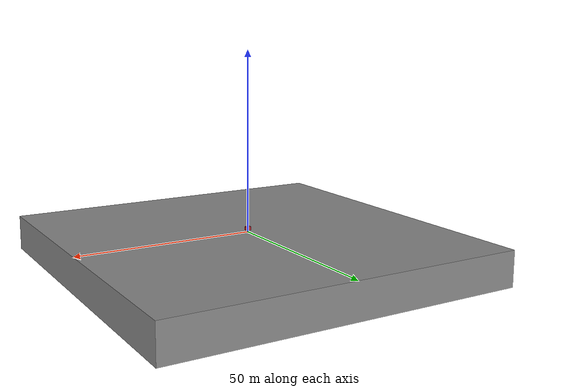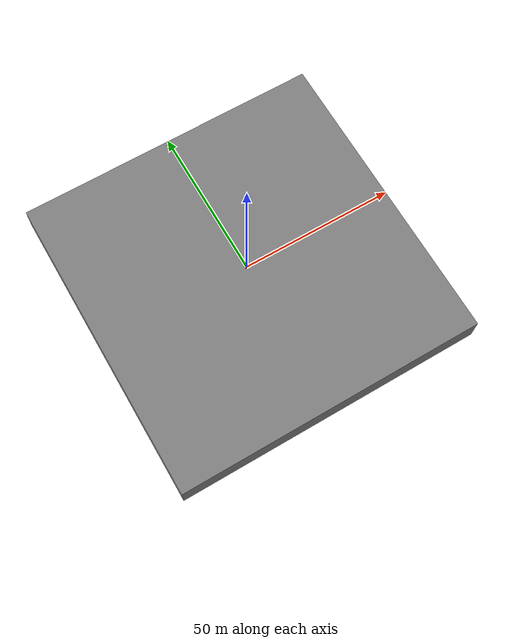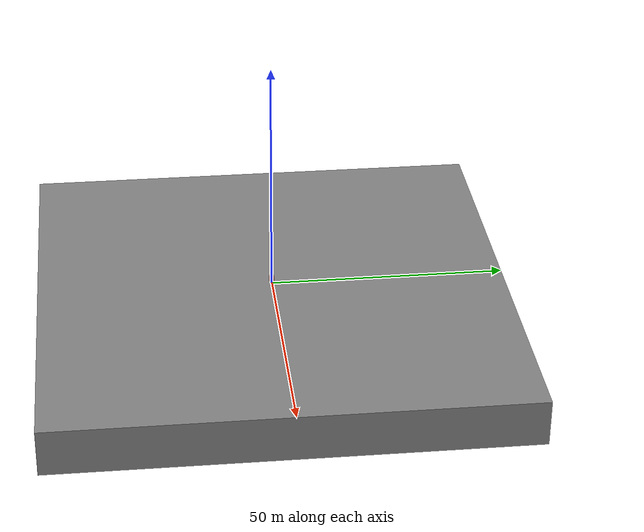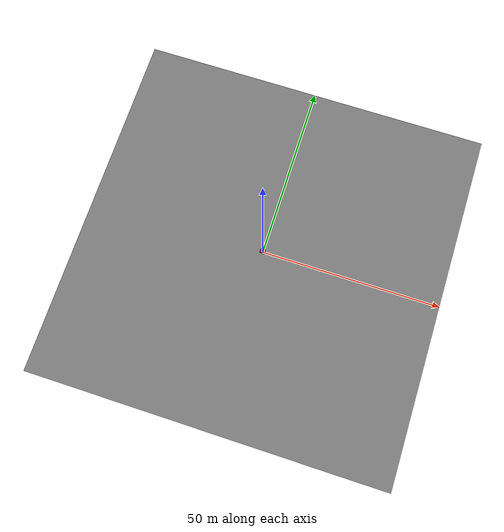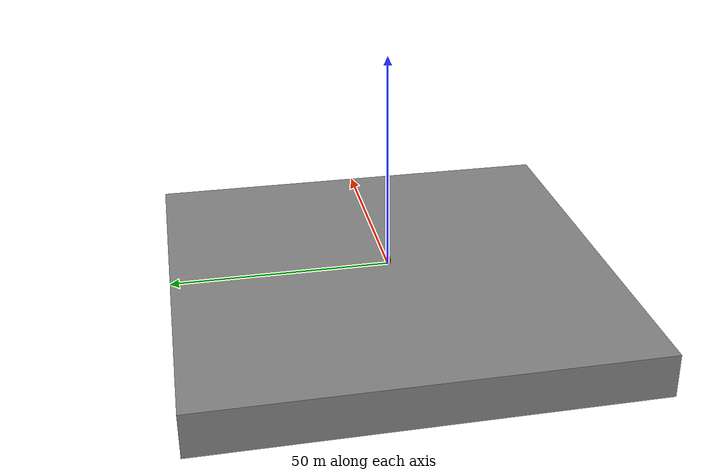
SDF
<?xml version='1.0'?>

<sdf version='1.6'>
    <model name='simple_car'>
        <link name='ground'>
            <pose frame=''>0 0 -5 0 0 0</pose>
            <inertial>
                <pose frame=''>0 0 0 0 0 0</pose>
                <mass>0</mass>
                <inertia>
                    <ixx>0</ixx>
                    <ixy>0</ixy>
                    <ixz>0</ixz>
                    <iyy>0</iyy>
                    <iyz>0</iyz>
                    <izz>0</izz>
                </inertia>
            </inertial>
            <collision name='ground_collision'>
                <pose frame=''>0 0 0 0 0 0</pose>
                <geometry>
                    <box>
                        <size>100.0 100.0 10.0</size>
                    </box>
                </geometry>
            </collision>
            <visual name='ground_visual'>
                <pose frame=''>0 0 0 0 0 0</pose>
                <geometry>
                    <box>
                        <size>100.0 100.0 10.0</size>
                    </box>
                </geometry>
                <material>
                    <diffuse>0.54 0.54 0.54 0.9</diffuse>
                </material>
            </visual>
        </link>
        <link name='body'>
            <pose frame=''>0 0 1 0 0 0</pose>
            <inertial>
                <pose frame=''>0 0 0 0 0 0</pose>
                <mass>10.0</mass>
                <inertia>
                    <ixx>1.0</ixx>
                    <ixy>0</ixy>
                    <ixz>0</ixz>
                    <iyy>1.0</iyy>
                    <iyz>0</iyz>
                    <izz>1.0</izz>
                </inertia>
            </inertial>
            <collision name='body_collision'>
                <pose frame=''>0 0 0 0 0 0</pose>
                <geometry>
                    <box>
                        <size>1.5 1 1</size>
                    </box>
                </geometry>
            </collision>
            <visual name='body_visual'>
                <pose frame=''>0 0 0 0 0 0</pose>
                <geometry>
                    <box>
                        <size>1.5 1 1</size>
                    </box>
                </geometry>
                <material>
                    <diffuse>0.64 0.12 0.15 0.9</diffuse>
                </material>
            </visual>
        </link>
        <link name='body_x'/>
        <link name='body_y'/>
        <joint name='body_x_sensor' type='prismatic'>
            <child>body_x</child>
            <parent>ground</parent>
            <axis>
                <xyz>1 0 0</xyz>
                <dynamics>
                    <damping>0</damping>
                    <friction>0</friction>
                    <spring_reference>0</spring_reference>
                    <spring_stiffness>0</spring_stiffness>
                </dynamics>
                <use_parent_model_frame>1</use_parent_model_frame>
            </axis>
        </joint>
        <joint name='body_y_sensor' type='prismatic'>
            <child>body_y</child>
            <parent>body_x</parent>
            <axis>
                <xyz>0 1 0</xyz>
                <dynamics>
                    <damping>0</damping>
                    <friction>0</friction>
                    <spring_reference>0</spring_reference>
                    <spring_stiffness>0</spring_stiffness>
                </dynamics>
                <use_parent_model_frame>1</use_parent_model_frame>
            </axis>
        </joint>
        <joint name='body_theta' type='revolute'>
            <child>body</child>
            <parent>body_y</parent>
            <axis>
                <xyz>0 0 1</xyz>
                <dynamics>
                    <damping>0</damping>
                    <friction>1</friction>
                    <spring_reference>0</spring_reference>
                    <spring_stiffness>0</spring_stiffness>
                </dynamics>
                <use_parent_model_frame>1</use_parent_model_frame>
            </axis>
        </joint>

        <!-- Placeholder to make port dimensions match... -->
        <link name='dummy1'/>
        <joint name='velocity' type='prismatic'>
            <child>dummy1</child>
            <parent>ground</parent>
            <axis>
                <xyz>1 0 0</xyz>
                <use_parent_model_frame>1</use_parent_model_frame>
            </axis>
        </joint>

    </model>
</sdf>
